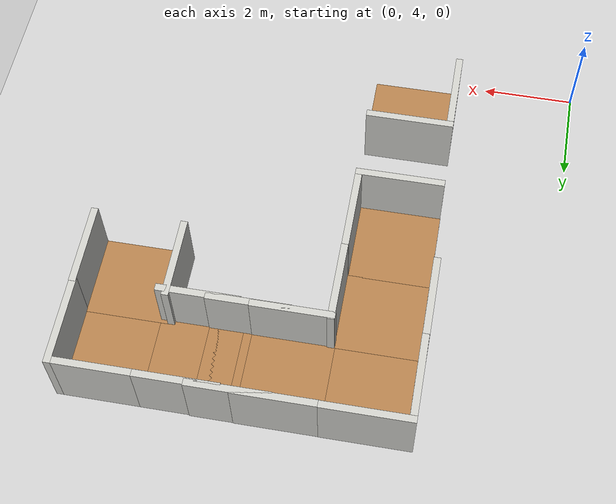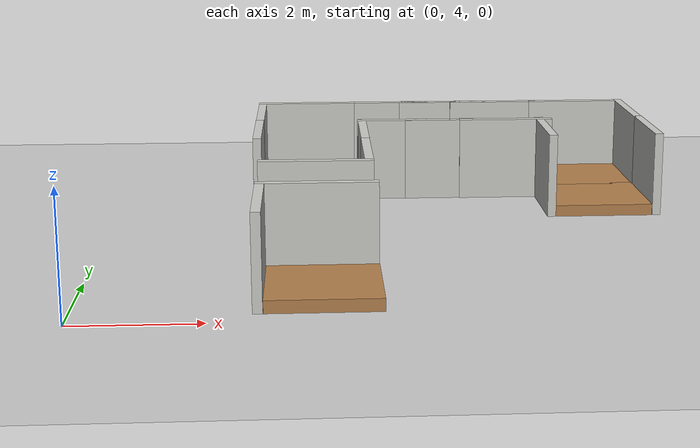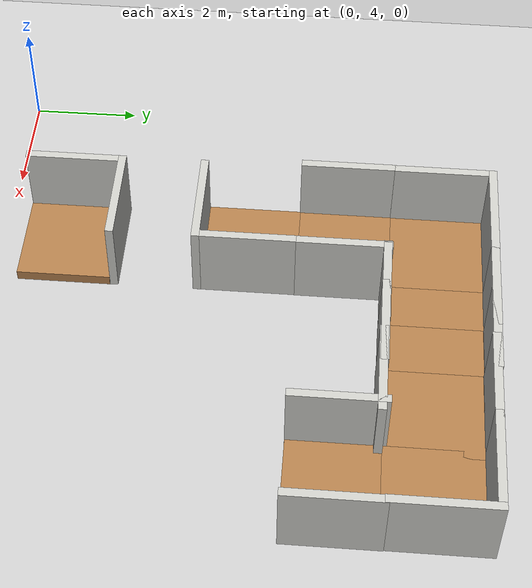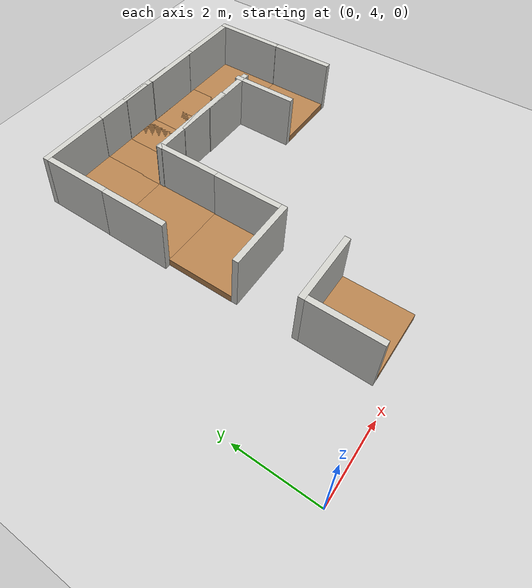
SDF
<sdf version="1.6">
 <world name="default">
  <model name="ground_plane">
   <static>1</static>
   <link name="link">
    <collision name="collision">
     <geometry><plane><normal>0 0 1</normal><size>100 100</size></plane></geometry>
     <surface><friction><ode><mu>100</mu><mu2>50</mu2></ode></friction></surface>
    </collision>
    <visual name="visual">
     <cast_shadows>0</cast_shadows>
     <geometry><plane><normal>0 0 1</normal><size>100 100</size></plane></geometry>
     <material>
      <script><uri>file://media/materials/scripts/gazebo.material</uri><name>Gazebo/Grey</name></script>
     </material>
    </visual>
   </link>
  </model>
  <model name="nerve_corner_clone_0">
   <pose>3.5797 5.3278 0 0 -0 0</pose>
   <link name="Wall_0">
    <collision name="Wall_0_Collision">
     <geometry><box><size>1.76 1.75 0.2</size></box></geometry>
     <pose>0 0 0.1 0 -0 0</pose>
    </collision>
    <visual name="Wall_0_Visual">
     <pose>0 0 0.1 0 -0 0</pose>
     <geometry><box><size>1.76 1.75 0.2</size></box></geometry>
     <material>
      <script><uri>file://media/materials/scripts/gazebo.material</uri><name>Gazebo/Wood</name></script>
      <ambient>1 0.764706 0.305882 1</ambient>
     </material>
    </visual>
    <pose>0.077507 -0.077007 0 0 -0 3.14159</pose>
   </link>
   <link name="Wall_2">
    <collision name="Wall_2_Collision">
     <geometry><box><size>1.75 0.15 1.5</size></box></geometry>
     <pose>0 0 0.75 0 -0 0</pose>
    </collision>
    <visual name="Wall_2_Visual">
     <pose>0 0 0.75 0 -0 0</pose>
     <geometry><box><size>1.75 0.15 1.5</size></box></geometry>
     <material>
      <script><uri>file://media/materials/scripts/gazebo.material</uri><name>Gazebo/CeilingTiled</name></script>
      <ambient>1 0.764706 0.305882 1</ambient>
     </material>
    </visual>
    <pose>-0.882493 -0.073007 0 0 0 -1.5708</pose>
   </link>
   <link name="Wall_4">
    <collision name="Wall_4_Collision">
     <geometry><box><size>1.91042 0.15 1.5</size></box></geometry>
     <pose>0 0 0.75 0 -0 0</pose>
    </collision>
    <visual name="Wall_4_Visual">
     <pose>0 0 0.75 0 -0 0</pose>
     <geometry><box><size>1.91042 0.15 1.5</size></box></geometry>
     <material>
      <script><uri>file://media/materials/scripts/gazebo.material</uri><name>Gazebo/CeilingTiled</name></script>
      <ambient>1 0.764706 0.305882 1</ambient>
     </material>
    </visual>
    <pose>-0.002284 0.876825 0 0 -0 3.1414</pose>
   </link>
   <static>1</static>
  </model>
  <model name="nerve_straight_clone_0_clone_0_clone_clone">
   <pose>3.49978 10.4549 0 0 -0 0</pose>
   <link name="Wall_0">
    <collision name="Wall_0_Collision">
     <geometry><box><size>1.76 1.75 0.2</size></box></geometry>
     <pose>0 0 0.1 0 -0 0</pose>
    </collision>
    <visual name="Wall_0_Visual">
     <pose>0 0 0.1 0 -0 0</pose>
     <geometry><box><size>1.76 1.75 0.2</size></box></geometry>
     <material>
      <script><uri>file://media/materials/scripts/gazebo.material</uri><name>Gazebo/Wood</name></script>
      <ambient>1 0.764706 0.305882 1</ambient>
     </material>
    </visual>
    <pose>0.005 -0.002 0 0 -0 3.14159</pose>
   </link>
   <link name="Wall_2">
    <collision name="Wall_2_Collision">
     <geometry><box><size>1.75 0.15 1.5</size></box></geometry>
     <pose>0 0 0.75 0 -0 0</pose>
    </collision>
    <visual name="Wall_2_Visual">
     <pose>0 0 0.75 0 -0 0</pose>
     <geometry><box><size>1.75 0.15 1.5</size></box></geometry>
     <material>
      <script><uri>file://media/materials/scripts/gazebo.material</uri><name>Gazebo/CeilingTiled</name></script>
      <ambient>1 0.764706 0.305882 1</ambient>
     </material>
    </visual>
    <pose>-0.955 0.002 0 0 0 -1.5708</pose>
   </link>
   <link name="Wall_4">
    <collision name="Wall_4_Collision">
     <geometry><box><size>1.75 0.15 1.5</size></box></geometry>
     <pose>0 0 0.75 0 -0 0</pose>
    </collision>
    <visual name="Wall_4_Visual">
     <pose>0 0 0.75 0 -0 0</pose>
     <geometry><box><size>1.75 0.15 1.5</size></box></geometry>
     <material>
      <script><uri>file://media/materials/scripts/gazebo.material</uri><name>Gazebo/CeilingTiled</name></script>
      <ambient>1 0.764706 0.305882 1</ambient>
     </material>
    </visual>
    <pose>0.955 0.002 0 0 0 -1.5708</pose>
   </link>
   <static>1</static>
  </model>
  <model name="nerve_corner_clone_0_clone_clone">
   <pose>3.56772 8.63967 0 0 -0 3.14159</pose>
   <link name="Wall_0">
    <collision name="Wall_0_Collision">
     <geometry><box><size>1.76 1.75 0.2</size></box></geometry>
     <pose>0 0 0.1 0 -0 0</pose>
    </collision>
    <visual name="Wall_0_Visual">
     <pose>0 0 0.1 0 -0 0</pose>
     <geometry><box><size>1.76 1.75 0.2</size></box></geometry>
     <material>
      <script><uri>file://media/materials/scripts/gazebo.material</uri><name>Gazebo/Wood</name></script>
      <ambient>1 0.764706 0.305882 1</ambient>
     </material>
    </visual>
    <pose>0.077507 -0.077007 0 0 -0 3.14159</pose>
   </link>
   <link name="Wall_2">
    <collision name="Wall_2_Collision">
     <geometry><box><size>1.75 0.15 1.5</size></box></geometry>
     <pose>0 0 0.75 0 -0 0</pose>
    </collision>
    <visual name="Wall_2_Visual">
     <pose>0 0 0.75 0 -0 0</pose>
     <geometry><box><size>1.75 0.15 1.5</size></box></geometry>
     <material>
      <script><uri>file://media/materials/scripts/gazebo.material</uri><name>Gazebo/CeilingTiled</name></script>
      <ambient>1 0.764706 0.305882 1</ambient>
     </material>
    </visual>
    <pose>-0.882493 -0.073007 0 0 0 -1.5708</pose>
   </link>
   <link name="Wall_4">
    <collision name="Wall_4_Collision">
     <geometry><box><size>1.91042 0.15 1.5</size></box></geometry>
     <pose>0 0 0.75 0 -0 0</pose>
    </collision>
    <visual name="Wall_4_Visual">
     <pose>0 0 0.75 0 -0 0</pose>
     <geometry><box><size>1.91042 0.15 1.5</size></box></geometry>
     <material>
      <script><uri>file://media/materials/scripts/gazebo.material</uri><name>Gazebo/CeilingTiled</name></script>
      <ambient>1 0.764706 0.305882 1</ambient>
     </material>
    </visual>
    <pose>-0.002284 0.876825 0 0 -0 3.1414</pose>
   </link>
   <static>1</static>
  </model>
  <model name="nerve_corner_clone_0_clone_clone_0">
   <pose>3.43317 12.2725 0 0 -0 0</pose>
   <link name="Wall_0">
    <collision name="Wall_0_Collision">
     <geometry><box><size>1.76 1.75 0.2</size></box></geometry>
     <pose>0 0 0.1 0 -0 0</pose>
    </collision>
    <visual name="Wall_0_Visual">
     <pose>0 0 0.1 0 -0 0</pose>
     <geometry><box><size>1.76 1.75 0.2</size></box></geometry>
     <material>
      <script><uri>file://media/materials/scripts/gazebo.material</uri><name>Gazebo/Wood</name></script>
      <ambient>1 0.764706 0.305882 1</ambient>
     </material>
    </visual>
    <pose>0.077507 -0.077007 0 0 -0 3.14159</pose>
   </link>
   <link name="Wall_2">
    <collision name="Wall_2_Collision">
     <geometry><box><size>1.75 0.15 1.5</size></box></geometry>
     <pose>0 0 0.75 0 -0 0</pose>
    </collision>
    <visual name="Wall_2_Visual">
     <pose>0 0 0.75 0 -0 0</pose>
     <geometry><box><size>1.75 0.15 1.5</size></box></geometry>
     <material>
      <script><uri>file://media/materials/scripts/gazebo.material</uri><name>Gazebo/CeilingTiled</name></script>
      <ambient>1 0.764706 0.305882 1</ambient>
     </material>
    </visual>
    <pose>-0.882493 -0.073007 0 0 0 -1.5708</pose>
   </link>
   <link name="Wall_4">
    <collision name="Wall_4_Collision">
     <geometry><box><size>1.91042 0.15 1.5</size></box></geometry>
     <pose>0 0 0.75 0 -0 0</pose>
    </collision>
    <visual name="Wall_4_Visual">
     <pose>0 0 0.75 0 -0 0</pose>
     <geometry><box><size>1.91042 0.15 1.5</size></box></geometry>
     <material>
      <script><uri>file://media/materials/scripts/gazebo.material</uri><name>Gazebo/CeilingTiled</name></script>
      <ambient>1 0.764706 0.305882 1</ambient>
     </material>
    </visual>
    <pose>-0.002284 0.876825 0 0 -0 3.1414</pose>
   </link>
   <static>1</static>
  </model>
  <model name="nerve_straight_clone_0_clone_0_clone_clone_0">
   <pose>5.24117 12.19 0 0 0 -1.5708</pose>
   <link name="Wall_0">
    <collision name="Wall_0_Collision">
     <geometry><box><size>1.76 1.75 0.2</size></box></geometry>
     <pose>0 0 0.1 0 -0 0</pose>
    </collision>
    <visual name="Wall_0_Visual">
     <pose>0 0 0.1 0 -0 0</pose>
     <geometry><box><size>1.76 1.75 0.2</size></box></geometry>
     <material>
      <script><uri>file://media/materials/scripts/gazebo.material</uri><name>Gazebo/Wood</name></script>
      <ambient>1 0.764706 0.305882 1</ambient>
     </material>
    </visual>
    <pose>0.005 -0.002 0 0 -0 3.14159</pose>
   </link>
   <link name="Wall_2">
    <collision name="Wall_2_Collision">
     <geometry><box><size>1.75 0.15 1.5</size></box></geometry>
     <pose>0 0 0.75 0 -0 0</pose>
    </collision>
    <visual name="Wall_2_Visual">
     <pose>0 0 0.75 0 -0 0</pose>
     <geometry><box><size>1.75 0.15 1.5</size></box></geometry>
     <material>
      <script><uri>file://media/materials/scripts/gazebo.material</uri><name>Gazebo/CeilingTiled</name></script>
      <ambient>1 0.764706 0.305882 1</ambient>
     </material>
    </visual>
    <pose>-0.955 0.002 0 0 0 -1.5708</pose>
   </link>
   <link name="Wall_4">
    <collision name="Wall_4_Collision">
     <geometry><box><size>1.75 0.15 1.5</size></box></geometry>
     <pose>0 0 0.75 0 -0 0</pose>
    </collision>
    <visual name="Wall_4_Visual">
     <pose>0 0 0.75 0 -0 0</pose>
     <geometry><box><size>1.75 0.15 1.5</size></box></geometry>
     <material>
      <script><uri>file://media/materials/scripts/gazebo.material</uri><name>Gazebo/CeilingTiled</name></script>
      <ambient>1 0.764706 0.305882 1</ambient>
     </material>
    </visual>
    <pose>0.955 0.002 0 0 0 -1.5708</pose>
   </link>
   <static>1</static>
  </model>
  <model name="nerve_straight_clone_0_clone_0_clone_clone_0_clone">
   <pose>7.16907 12.1637 0 0 0 -1.5708</pose>
   <link name="Wall_0">
    <collision name="Wall_0_Collision">
     <geometry><box><size>1.76 1.75 0.2</size></box></geometry>
     <pose>0 0 0.1 0 -0 0</pose>
    </collision>
    <visual name="Wall_0_Visual">
     <pose>0 0 0.1 0 -0 0</pose>
     <geometry><box><size>1.76 1.75 0.2</size></box></geometry>
     <material>
      <script><uri>file://media/materials/scripts/gazebo.material</uri><name>Gazebo/Wood</name></script>
      <ambient>1 0.764706 0.305882 1</ambient>
     </material>
    </visual>
    <pose>0.005 -0.002 0 0 -0 3.14159</pose>
   </link>
   <link name="Wall_2">
    <collision name="Wall_2_Collision">
     <geometry><box><size>1.75 0.15 1.5</size></box></geometry>
     <pose>0 0 0.75 0 -0 0</pose>
    </collision>
    <visual name="Wall_2_Visual">
     <pose>0 0 0.75 0 -0 0</pose>
     <geometry><box><size>1.75 0.15 1.5</size></box></geometry>
     <material>
      <script><uri>file://media/materials/scripts/gazebo.material</uri><name>Gazebo/CeilingTiled</name></script>
      <ambient>1 0.764706 0.305882 1</ambient>
     </material>
    </visual>
    <pose>-0.955 0.002 0 0 0 -1.5708</pose>
   </link>
   <link name="Wall_4">
    <collision name="Wall_4_Collision">
     <geometry><box><size>1.75 0.15 1.5</size></box></geometry>
     <pose>0 0 0.75 0 -0 0</pose>
    </collision>
    <visual name="Wall_4_Visual">
     <pose>0 0 0.75 0 -0 0</pose>
     <geometry><box><size>1.75 0.15 1.5</size></box></geometry>
     <material>
      <script><uri>file://media/materials/scripts/gazebo.material</uri><name>Gazebo/CeilingTiled</name></script>
      <ambient>1 0.764706 0.305882 1</ambient>
     </material>
    </visual>
    <pose>0.955 0.002 0 0 0 -1.5708</pose>
   </link>
   <static>1</static>
  </model>
  <model name="nerve_corner_clone_0_clone_clone_0_clone">
   <pose>8.84101 12.235 0 0 0 -1.5708</pose>
   <link name="Wall_0">
    <collision name="Wall_0_Collision">
     <geometry><box><size>1.76 1.75 0.2</size></box></geometry>
     <pose>0 0 0.1 0 -0 0</pose>
    </collision>
    <visual name="Wall_0_Visual">
     <pose>0 0 0.1 0 -0 0</pose>
     <geometry><box><size>1.76 1.75 0.2</size></box></geometry>
     <material>
      <script><uri>file://media/materials/scripts/gazebo.material</uri><name>Gazebo/Wood</name></script>
      <ambient>1 0.764706 0.305882 1</ambient>
     </material>
    </visual>
    <pose>0.077507 -0.077007 0 0 -0 3.14159</pose>
   </link>
   <link name="Wall_2">
    <collision name="Wall_2_Collision">
     <geometry><box><size>1.75 0.15 1.5</size></box></geometry>
     <pose>0 0 0.75 0 -0 0</pose>
    </collision>
    <visual name="Wall_2_Visual">
     <pose>0 0 0.75 0 -0 0</pose>
     <geometry><box><size>1.75 0.15 1.5</size></box></geometry>
     <material>
      <script><uri>file://media/materials/scripts/gazebo.material</uri><name>Gazebo/CeilingTiled</name></script>
      <ambient>1 0.764706 0.305882 1</ambient>
     </material>
    </visual>
    <pose>-0.882493 -0.073007 0 0 0 -1.5708</pose>
   </link>
   <link name="Wall_4">
    <collision name="Wall_4_Collision">
     <geometry><box><size>1.91042 0.15 1.5</size></box></geometry>
     <pose>0 0 0.75 0 -0 0</pose>
    </collision>
    <visual name="Wall_4_Visual">
     <pose>0 0 0.75 0 -0 0</pose>
     <geometry><box><size>1.91042 0.15 1.5</size></box></geometry>
     <material>
      <script><uri>file://media/materials/scripts/gazebo.material</uri><name>Gazebo/CeilingTiled</name></script>
      <ambient>1 0.764706 0.305882 1</ambient>
     </material>
    </visual>
    <pose>-0.002284 0.876825 0 0 -0 3.1414</pose>
   </link>
   <static>1</static>
  </model>
  <model name="nerve_straight_clone_0_clone_0_clone_clone_0_clone_clone">
   <pose>8.77191 10.4866 0 0 -0 3.14159</pose>
   <link name="Wall_0">
    <collision name="Wall_0_Collision">
     <geometry><box><size>1.76 1.75 0.2</size></box></geometry>
     <pose>0 0 0.1 0 -0 0</pose>
    </collision>
    <visual name="Wall_0_Visual">
     <pose>0 0 0.1 0 -0 0</pose>
     <geometry><box><size>1.76 1.75 0.2</size></box></geometry>
     <material>
      <script><uri>file://media/materials/scripts/gazebo.material</uri><name>Gazebo/Wood</name></script>
      <ambient>1 0.764706 0.305882 1</ambient>
     </material>
    </visual>
    <pose>0.005 -0.002 0 0 -0 3.14159</pose>
   </link>
   <link name="Wall_2">
    <collision name="Wall_2_Collision">
     <geometry><box><size>1.75 0.15 1.5</size></box></geometry>
     <pose>0 0 0.75 0 -0 0</pose>
    </collision>
    <visual name="Wall_2_Visual">
     <pose>0 0 0.75 0 -0 0</pose>
     <geometry><box><size>1.75 0.15 1.5</size></box></geometry>
     <material>
      <script><uri>file://media/materials/scripts/gazebo.material</uri><name>Gazebo/CeilingTiled</name></script>
      <ambient>1 0.764706 0.305882 1</ambient>
     </material>
    </visual>
    <pose>-0.955 0.002 0 0 0 -1.5708</pose>
   </link>
   <link name="Wall_4">
    <collision name="Wall_4_Collision">
     <geometry><box><size>1.75 0.15 1.5</size></box></geometry>
     <pose>0 0 0.75 0 -0 0</pose>
    </collision>
    <visual name="Wall_4_Visual">
     <pose>0 0 0.75 0 -0 0</pose>
     <geometry><box><size>1.75 0.15 1.5</size></box></geometry>
     <material>
      <script><uri>file://media/materials/scripts/gazebo.material</uri><name>Gazebo/CeilingTiled</name></script>
      <ambient>1 0.764706 0.305882 1</ambient>
     </material>
    </visual>
    <pose>0.955 0.002 0 0 0 -1.5708</pose>
   </link>
   <static>1</static>
  </model>
  <model name="nerve_straight_clone_0_clone_0_clone_clone_0_clone_0">
   <pose>6.14334 12.1816 0 0 0 -1.5708</pose>
   <link name="Wall_0">
    <collision name="Wall_0_Collision">
     <geometry><box><size>1.76 1.75 0.2</size></box></geometry>
     <pose>0 0 0.1 0 -0 0</pose>
    </collision>
    <visual name="Wall_0_Visual">
     <pose>0 0 0.1 0 -0 0</pose>
     <geometry><box><size>1.76 1.75 0.2</size></box></geometry>
     <material>
      <script><uri>file://media/materials/scripts/gazebo.material</uri><name>Gazebo/Wood</name></script>
      <ambient>1 0.764706 0.305882 1</ambient>
     </material>
    </visual>
    <pose>0.005 -0.002 0 0 -0 3.14159</pose>
   </link>
   <link name="Wall_2">
    <collision name="Wall_2_Collision">
     <geometry><box><size>1.75 0.15 1.5</size></box></geometry>
     <pose>0 0 0.75 0 -0 0</pose>
    </collision>
    <visual name="Wall_2_Visual">
     <pose>0 0 0.75 0 -0 0</pose>
     <geometry><box><size>1.75 0.15 1.5</size></box></geometry>
     <material>
      <script><uri>file://media/materials/scripts/gazebo.material</uri><name>Gazebo/CeilingTiled</name></script>
      <ambient>1 0.764706 0.305882 1</ambient>
     </material>
    </visual>
    <pose>-0.955 0.002 0 0 0 -1.5708</pose>
   </link>
   <link name="Wall_4">
    <collision name="Wall_4_Collision">
     <geometry><box><size>1.75 0.15 1.5</size></box></geometry>
     <pose>0 0 0.75 0 -0 0</pose>
    </collision>
    <visual name="Wall_4_Visual">
     <pose>0 0 0.75 0 -0 0</pose>
     <geometry><box><size>1.75 0.15 1.5</size></box></geometry>
     <material>
      <script><uri>file://media/materials/scripts/gazebo.material</uri><name>Gazebo/CeilingTiled</name></script>
      <ambient>1 0.764706 0.305882 1</ambient>
     </material>
    </visual>
    <pose>0.955 0.002 0 0 0 -1.5708</pose>
   </link>
   <static>1</static>
  </model>
 </world>
</sdf>
